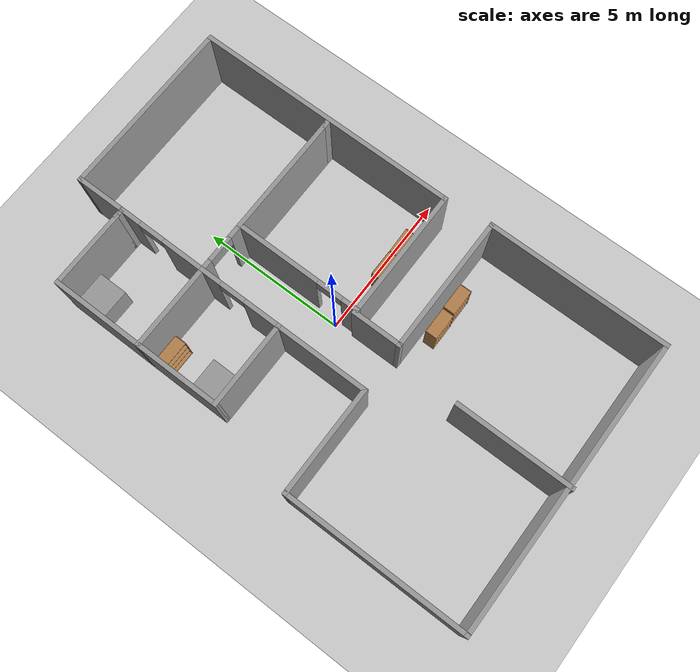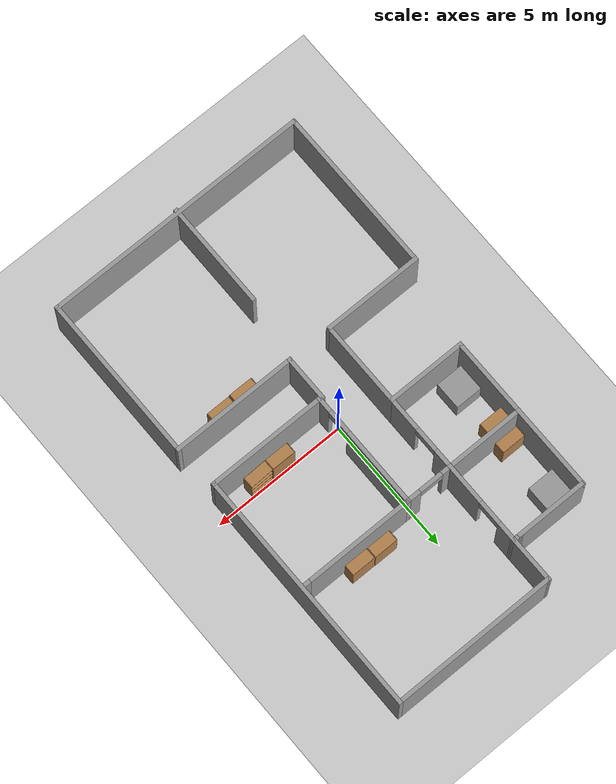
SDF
<sdf version="1.7">
 <world name="default">
  <light name="sun" type="directional">
   <pose>0 0 10 0 -0 0</pose>
   <diffuse>0.8 0.8 0.8 1</diffuse>
   <specular>0.2 0.2 0.2 1</specular>
   <attenuation>
    <range>1000</range>
    <constant>0.9</constant>
    <linear>0.01</linear>
    <quadratic>0.001</quadratic>
   </attenuation>
   <direction>-0.5 0.1 -0.9</direction>
   <spot><inner_angle>0</inner_angle><outer_angle>0</outer_angle><falloff>0</falloff></spot>
  </light>
  <model name="ground_plane">
   <static>1</static>
   <link name="link">
    <collision name="collision">
     <geometry><plane><normal>0 0 1</normal><size>100 100</size></plane></geometry>
     <surface>
      <contact><collide_bitmask>65535</collide_bitmask></contact>
      <friction><ode><mu>100</mu><mu2>50</mu2></ode></friction>
     </surface>
    </collision>
    <visual name="visual">
     <cast_shadows>0</cast_shadows>
     <geometry><plane><normal>0 0 1</normal><size>100 100</size></plane></geometry>
     <material>
      <script><uri>file://media/materials/scripts/gazebo.material</uri><name>Gazebo/Grey</name></script>
     </material>
    </visual>
   </link>
  </model>
  <gravity>0 0 -9.8</gravity>
  <magnetic_field>6e-06 2.3e-05 -4.2e-05</magnetic_field>
  <atmosphere type="adiabatic"/>
  <physics type="ode">
   <max_step_size>0.001</max_step_size>
   <real_time_factor>1</real_time_factor>
   <real_time_update_rate>1000</real_time_update_rate>
  </physics>
  <scene><ambient>0.4 0.4 0.4 1</ambient><background>0.7 0.7 0.7 1</background><shadows>1</shadows></scene>
  <audio><device>default</device></audio>
  <spherical_coordinates>
   <surface_model>EARTH_WGS84</surface_model>
   <latitude_deg>0</latitude_deg>
   <longitude_deg>0</longitude_deg>
   <elevation>0</elevation>
   <heading_deg>0</heading_deg>
  </spherical_coordinates>
  <model name="plan3">
   <pose>-0.180826 0.00285 0 0 -0 0</pose>
   <link name="Wall_0">
    <collision name="Wall_0_Collision">
     <geometry><box><size>6.25 0.15 2.5</size></box></geometry>
     <pose>0 0 1.25 0 -0 0</pose>
    </collision>
    <visual name="Wall_0_Visual">
     <pose>0 0 1.25 0 -0 0</pose>
     <geometry><box><size>6.25 0.15 2.5</size></box></geometry>
     <material>
      <script><uri>file://media/materials/scripts/gazebo.material</uri><name>Gazebo/Grey</name></script>
      <ambient>1 1 1 1</ambient>
     </material>
     <meta><layer>0</layer></meta>
    </visual>
    <pose>1.725 8.43781 0 0 -0 0</pose>
   </link>
   <link name="Wall_1">
    <collision name="Wall_1_Collision">
     <geometry><box><size>9.25 0.15 2.5</size></box></geometry>
     <pose>0 0 1.25 0 -0 0</pose>
    </collision>
    <visual name="Wall_1_Visual">
     <pose>0 0 1.25 0 -0 0</pose>
     <geometry><box><size>9.25 0.15 2.5</size></box></geometry>
     <material>
      <script><uri>file://media/materials/scripts/gazebo.material</uri><name>Gazebo/Grey</name></script>
      <ambient>1 1 1 1</ambient>
     </material>
     <meta><layer>0</layer></meta>
    </visual>
    <pose>4.775 3.88781 0 0 -0 -1.5708</pose>
   </link>
   <link name="Wall_10">
    <collision name="Wall_10_Collision">
     <geometry><box><size>0.25 0.15 2.5</size></box></geometry>
     <pose>0 0 1.25 0 -0 0</pose>
    </collision>
    <visual name="Wall_10_Visual">
     <pose>0 0 1.25 0 -0 0</pose>
     <geometry><box><size>0.25 0.15 2.5</size></box></geometry>
     <material>
      <script><uri>file://media/materials/scripts/gazebo.material</uri><name>Gazebo/Grey</name></script>
      <ambient>1 1 1 1</ambient>
     </material>
     <meta><layer>0</layer></meta>
    </visual>
    <pose>-1.525 6.78781 0 0 -0 0</pose>
   </link>
   <link name="Wall_15">
    <collision name="Wall_15_Collision">
     <geometry><box><size>0.406029 0.15 2.5</size></box></geometry>
     <pose>0 0 1.25 0 -0 0</pose>
    </collision>
    <visual name="Wall_15_Visual">
     <pose>0 0 1.25 0 -0 0</pose>
     <geometry><box><size>0.406029 0.15 2.5</size></box></geometry>
     <material>
      <script><uri>file://media/materials/scripts/gazebo.material</uri><name>Gazebo/Grey</name></script>
      <ambient>1 1 1 1</ambient>
     </material>
     <meta><layer>0</layer></meta>
    </visual>
    <pose>-1.44699 6.7871 0 0 -0 -0.005512</pose>
   </link>
   <link name="Wall_16">
    <collision name="Wall_16_Collision">
     <geometry><box><size>1.80142 0.15 2.5</size></box></geometry>
     <pose>0 0 1.25 0 -0 0</pose>
    </collision>
    <visual name="Wall_16_Visual">
     <pose>0 0 1.25 0 -0 0</pose>
     <geometry><box><size>1.80142 0.15 2.5</size></box></geometry>
     <material>
      <script><uri>file://media/materials/scripts/gazebo.material</uri><name>Gazebo/Grey</name></script>
      <ambient>1 1 1 1</ambient>
     </material>
     <meta><layer>0</layer></meta>
    </visual>
    <pose>-1.32199 7.6121 0 0 -0 1.57444</pose>
   </link>
   <link name="Wall_18">
    <collision name="Wall_18_Collision">
     <geometry><box><size>3 0.15 2.5</size></box></geometry>
     <pose>0 0 1.25 0 -0 0</pose>
    </collision>
    <visual name="Wall_18_Visual">
     <pose>0 0 1.25 0 -0 0</pose>
     <geometry><box><size>3 0.15 2.5</size></box></geometry>
     <material>
      <script><uri>file://media/materials/scripts/gazebo.material</uri><name>Gazebo/Grey</name></script>
      <ambient>1 1 1 1</ambient>
     </material>
     <meta><layer>0</layer></meta>
    </visual>
    <pose>-4.175 2.26281 0 0 -0 -1.5708</pose>
   </link>
   <link name="Wall_19">
    <collision name="Wall_19_Collision">
     <geometry><box><size>3 0.15 2.5</size></box></geometry>
     <pose>0 0 1.25 0 -0 0</pose>
    </collision>
    <visual name="Wall_19_Visual">
     <pose>0 0 1.25 0 -0 0</pose>
     <geometry><box><size>3 0.15 2.5</size></box></geometry>
     <material>
      <script><uri>file://media/materials/scripts/gazebo.material</uri><name>Gazebo/Grey</name></script>
      <ambient>1 1 1 1</ambient>
     </material>
     <meta><layer>0</layer></meta>
    </visual>
    <pose>-2.75 0.83781 0 0 -0 0</pose>
   </link>
   <link name="Wall_2">
    <collision name="Wall_2_Collision">
     <geometry><box><size>4.5 0.15 2.5</size></box></geometry>
     <pose>0 0 1.25 0 -0 0</pose>
    </collision>
    <visual name="Wall_2_Visual">
     <pose>0 0 1.25 0 -0 0</pose>
     <geometry><box><size>4.5 0.15 2.5</size></box></geometry>
     <material>
      <script><uri>file://media/materials/scripts/gazebo.material</uri><name>Gazebo/Grey</name></script>
      <ambient>1 1 1 1</ambient>
     </material>
     <meta><layer>0</layer></meta>
    </visual>
    <pose>2.6 -0.66219 0 0 -0 3.14159</pose>
   </link>
   <link name="Wall_20">
    <pose>-1.325 2.26281 0 0 -0 1.5708</pose>
    <visual name="Wall_20_Visual_0">
     <pose>-0.834334 0 1.25 0 -0 0</pose>
     <geometry><box><size>1.33133 0.15 2.5</size></box></geometry>
     <material>
      <script><uri>file://media/materials/scripts/gazebo.material</uri><name>Gazebo/Grey</name></script>
      <ambient>1 1 1 1</ambient>
     </material>
     <meta><layer>0</layer></meta>
    </visual>
    <collision name="Wall_20_Collision_0">
     <geometry><box><size>1.33133 0.15 2.5</size></box></geometry>
     <pose>-0.834334 0 1.25 0 -0 0</pose>
    </collision>
    <visual name="Wall_20_Visual_1">
     <pose>1.11567 0 1.25 0 -0 0</pose>
     <geometry><box><size>0.768667 0.15 2.5</size></box></geometry>
     <material>
      <script><uri>file://media/materials/scripts/gazebo.material</uri><name>Gazebo/Grey</name></script>
      <ambient>1 1 1 1</ambient>
     </material>
     <meta><layer>0</layer></meta>
    </visual>
    <collision name="Wall_20_Collision_1">
     <geometry><box><size>0.768667 0.15 2.5</size></box></geometry>
     <pose>1.11567 0 1.25 0 -0 0</pose>
    </collision>
    <visual name="Wall_20_Visual_2">
     <pose>0.281333 0 2.25 0 -0 0</pose>
     <geometry><box><size>0.9 0.15 0.5</size></box></geometry>
     <material>
      <script><uri>file://media/materials/scripts/gazebo.material</uri><name>Gazebo/Grey</name></script>
      <ambient>1 1 1 1</ambient>
     </material>
     <meta><layer>0</layer></meta>
    </visual>
    <collision name="Wall_20_Collision_2">
     <geometry><box><size>0.9 0.15 0.5</size></box></geometry>
     <pose>0.281333 0 2.25 0 -0 0</pose>
    </collision>
   </link>
   <link name="Wall_22">
    <collision name="Wall_22_Collision">
     <geometry><box><size>3.25 0.15 2.5</size></box></geometry>
     <pose>0 0 1.25 0 -0 0</pose>
    </collision>
    <visual name="Wall_22_Visual">
     <pose>0 0 1.25 0 -0 0</pose>
     <geometry><box><size>3.25 0.15 2.5</size></box></geometry>
     <material>
      <script><uri>file://media/materials/scripts/gazebo.material</uri><name>Gazebo/Grey</name></script>
      <ambient>1 1 1 1</ambient>
     </material>
     <meta><layer>0</layer></meta>
    </visual>
    <pose>-1.325 -0.71219 0 0 -0 -1.5708</pose>
   </link>
   <link name="Wall_23">
    <collision name="Wall_23_Collision">
     <geometry><box><size>3.75 0.15 2.5</size></box></geometry>
     <pose>0 0 1.25 0 -0 0</pose>
    </collision>
    <visual name="Wall_23_Visual">
     <pose>0 0 1.25 0 -0 0</pose>
     <geometry><box><size>3.75 0.15 2.5</size></box></geometry>
     <material>
      <script><uri>file://media/materials/scripts/gazebo.material</uri><name>Gazebo/Grey</name></script>
      <ambient>1 1 1 1</ambient>
     </material>
     <meta><layer>0</layer></meta>
    </visual>
    <pose>-3.125 -2.26219 0 0 -0 3.14159</pose>
   </link>
   <link name="Wall_24">
    <collision name="Wall_24_Collision">
     <geometry><box><size>6.25 0.15 2.5</size></box></geometry>
     <pose>0 0 1.25 0 -0 0</pose>
    </collision>
    <visual name="Wall_24_Visual">
     <pose>0 0 1.25 0 -0 0</pose>
     <geometry><box><size>6.25 0.15 2.5</size></box></geometry>
     <material>
      <script><uri>file://media/materials/scripts/gazebo.material</uri><name>Gazebo/Grey</name></script>
      <ambient>1 1 1 1</ambient>
     </material>
     <meta><layer>0</layer></meta>
    </visual>
    <pose>-4.925 -5.31219 0 0 -0 -1.5708</pose>
   </link>
   <link name="Wall_25">
    <collision name="Wall_25_Collision">
     <geometry><box><size>10 0.15 2.5</size></box></geometry>
     <pose>0 0 1.25 0 -0 0</pose>
    </collision>
    <visual name="Wall_25_Visual">
     <pose>0 0 1.25 0 -0 0</pose>
     <geometry><box><size>10 0.15 2.5</size></box></geometry>
     <material>
      <script><uri>file://media/materials/scripts/gazebo.material</uri><name>Gazebo/Grey</name></script>
      <ambient>1 1 1 1</ambient>
     </material>
     <meta><layer>0</layer></meta>
    </visual>
    <pose>-0 -8.36219 0 0 -0 0</pose>
   </link>
   <link name="Wall_26">
    <collision name="Wall_26_Collision">
     <geometry><box><size>6.25 0.15 2.5</size></box></geometry>
     <pose>0 0 1.25 0 -0 0</pose>
    </collision>
    <visual name="Wall_26_Visual">
     <pose>0 0 1.25 0 -0 0</pose>
     <geometry><box><size>6.25 0.15 2.5</size></box></geometry>
     <material>
      <script><uri>file://media/materials/scripts/gazebo.material</uri><name>Gazebo/Grey</name></script>
      <ambient>1 1 1 1</ambient>
     </material>
     <meta><layer>0</layer></meta>
    </visual>
    <pose>4.925 -5.31219 0 0 -0 1.5708</pose>
   </link>
   <link name="Wall_27">
    <collision name="Wall_27_Collision">
     <geometry><box><size>4.75 0.15 2.5</size></box></geometry>
     <pose>0 0 1.25 0 -0 0</pose>
    </collision>
    <visual name="Wall_27_Visual">
     <pose>0 0 1.25 0 -0 0</pose>
     <geometry><box><size>4.75 0.15 2.5</size></box></geometry>
     <material>
      <script><uri>file://media/materials/scripts/gazebo.material</uri><name>Gazebo/Grey</name></script>
      <ambient>1 1 1 1</ambient>
     </material>
     <meta><layer>0</layer></meta>
    </visual>
    <pose>2.625 -2.26219 0 0 -0 3.14159</pose>
   </link>
   <link name="Wall_28">
    <collision name="Wall_28_Collision">
     <geometry><box><size>1.75 0.15 2.5</size></box></geometry>
     <pose>0 0 1.25 0 -0 0</pose>
    </collision>
    <visual name="Wall_28_Visual">
     <pose>0 0 1.25 0 -0 0</pose>
     <geometry><box><size>1.75 0.15 2.5</size></box></geometry>
     <material>
      <script><uri>file://media/materials/scripts/gazebo.material</uri><name>Gazebo/Grey</name></script>
      <ambient>1 1 1 1</ambient>
     </material>
     <meta><layer>0</layer></meta>
    </visual>
    <pose>0.325 -1.46219 0 0 -0 1.5708</pose>
   </link>
   <link name="Wall_3">
    <pose>0.425 1.51281 0 0 -0 1.5708</pose>
    <visual name="Wall_3_Visual_0">
     <pose>-1.94457 0 1.25 0 -0 0</pose>
     <geometry><box><size>0.610855 0.15 2.5</size></box></geometry>
     <material>
      <script><uri>file://media/materials/scripts/gazebo.material</uri><name>Gazebo/Grey</name></script>
      <ambient>1 1 1 1</ambient>
     </material>
     <meta><layer>0</layer></meta>
    </visual>
    <collision name="Wall_3_Collision_0">
     <geometry><box><size>0.610855 0.15 2.5</size></box></geometry>
     <pose>-1.94457 0 1.25 0 -0 0</pose>
    </collision>
    <visual name="Wall_3_Visual_1">
     <pose>0.755428 0 1.25 0 -0 0</pose>
     <geometry><box><size>2.98915 0.15 2.5</size></box></geometry>
     <material>
      <script><uri>file://media/materials/scripts/gazebo.material</uri><name>Gazebo/Grey</name></script>
      <ambient>1 1 1 1</ambient>
     </material>
     <meta><layer>0</layer></meta>
    </visual>
    <collision name="Wall_3_Collision_1">
     <geometry><box><size>2.98915 0.15 2.5</size></box></geometry>
     <pose>0.755428 0 1.25 0 -0 0</pose>
    </collision>
    <visual name="Wall_3_Visual_2">
     <pose>-1.18914 0 2.25 0 -0 0</pose>
     <geometry><box><size>0.9 0.15 0.5</size></box></geometry>
     <material>
      <script><uri>file://media/materials/scripts/gazebo.material</uri><name>Gazebo/Grey</name></script>
      <ambient>1 1 1 1</ambient>
     </material>
     <meta><layer>0</layer></meta>
    </visual>
    <collision name="Wall_3_Collision_2">
     <geometry><box><size>0.9 0.15 0.5</size></box></geometry>
     <pose>-1.18914 0 2.25 0 -0 0</pose>
    </collision>
   </link>
   <link name="Wall_32">
    <collision name="Wall_32_Collision">
     <geometry><box><size>4 0.15 2.5</size></box></geometry>
     <pose>0 0 1.25 0 -0 0</pose>
    </collision>
    <visual name="Wall_32_Visual">
     <pose>0 0 1.25 0 -0 0</pose>
     <geometry><box><size>4 0.15 2.5</size></box></geometry>
     <material>
      <script><uri>file://media/materials/scripts/gazebo.material</uri><name>Gazebo/Grey</name></script>
      <ambient>1 1 1 1</ambient>
     </material>
     <meta><layer>0</layer></meta>
    </visual>
    <pose>-0.070108 -6.51308 0 0 -0 -1.5708</pose>
   </link>
   <link name="Wall_34">
    <pose>-1.32199 5.2371 0 0 -0 -1.57274</pose>
    <visual name="Wall_34_Visual_0">
     <pose>-1.23447 0 1.25 0 -0 0</pose>
     <geometry><box><size>0.779648 0.15 2.5</size></box></geometry>
     <material>
      <script><uri>file://media/materials/scripts/gazebo.material</uri><name>Gazebo/Grey</name></script>
      <ambient>1 1 1 1</ambient>
     </material>
     <meta><layer>0</layer></meta>
    </visual>
    <collision name="Wall_34_Collision_0">
     <geometry><box><size>0.779648 0.15 2.5</size></box></geometry>
     <pose>-1.23447 0 1.25 0 -0 0</pose>
    </collision>
    <visual name="Wall_34_Visual_1">
     <pose>0.839824 0 1.25 0 -0 0</pose>
     <geometry><box><size>1.56895 0.15 2.5</size></box></geometry>
     <material>
      <script><uri>file://media/materials/scripts/gazebo.material</uri><name>Gazebo/Grey</name></script>
      <ambient>1 1 1 1</ambient>
     </material>
     <meta><layer>0</layer></meta>
    </visual>
    <collision name="Wall_34_Collision_1">
     <geometry><box><size>1.56895 0.15 2.5</size></box></geometry>
     <pose>0.839824 0 1.25 0 -0 0</pose>
    </collision>
    <visual name="Wall_34_Visual_2">
     <pose>-0.39465 0 2.25 0 -0 0</pose>
     <geometry><box><size>0.9 0.15 0.5</size></box></geometry>
     <material>
      <script><uri>file://media/materials/scripts/gazebo.material</uri><name>Gazebo/Grey</name></script>
      <ambient>1 1 1 1</ambient>
     </material>
     <meta><layer>0</layer></meta>
    </visual>
    <collision name="Wall_34_Collision_2">
     <geometry><box><size>0.9 0.15 0.5</size></box></geometry>
     <pose>-0.39465 0 2.25 0 -0 0</pose>
    </collision>
   </link>
   <link name="Wall_4">
    <collision name="Wall_4_Collision">
     <geometry><box><size>4.25 0.15 2.5</size></box></geometry>
     <pose>0 0 1.25 0 -0 0</pose>
    </collision>
    <visual name="Wall_4_Visual">
     <pose>0 0 1.25 0 -0 0</pose>
     <geometry><box><size>4.25 0.15 2.5</size></box></geometry>
     <material>
      <script><uri>file://media/materials/scripts/gazebo.material</uri><name>Gazebo/Grey</name></script>
      <ambient>1 1 1 1</ambient>
     </material>
     <meta><layer>0</layer></meta>
    </visual>
    <pose>2.475 3.68781 0 0 -0 0</pose>
   </link>
   <link name="Wall_5">
    <collision name="Wall_5_Collision">
     <geometry><box><size>0.25 0.15 2.5</size></box></geometry>
     <pose>0 0 1.25 0 -0 0</pose>
    </collision>
    <visual name="Wall_5_Visual">
     <pose>0 0 1.25 0 -0 0</pose>
     <geometry><box><size>0.25 0.15 2.5</size></box></geometry>
     <material>
      <script><uri>file://media/materials/scripts/gazebo.material</uri><name>Gazebo/Grey</name></script>
      <ambient>1 1 1 1</ambient>
     </material>
     <meta><layer>0</layer></meta>
    </visual>
    <pose>4.575 3.68781 0 0 -0 0</pose>
   </link>
   <link name="Wall_7">
    <pose>-1.875 3.68781 0 0 -0 3.14159</pose>
    <visual name="Wall_7_Visual_0">
     <pose>-2.09181 0 1.25 0 -0 0</pose>
     <geometry><box><size>0.566379 0.15 2.5</size></box></geometry>
     <material>
      <script><uri>file://media/materials/scripts/gazebo.material</uri><name>Gazebo/Grey</name></script>
      <ambient>1 1 1 1</ambient>
     </material>
     <meta><layer>0</layer></meta>
    </visual>
    <collision name="Wall_7_Collision_0">
     <geometry><box><size>0.566379 0.15 2.5</size></box></geometry>
     <pose>-2.09181 0 1.25 0 -0 0</pose>
    </collision>
    <visual name="Wall_7_Visual_1">
     <pose>0.733189 0 1.25 0 -0 0</pose>
     <geometry><box><size>3.28362 0.15 2.5</size></box></geometry>
     <material>
      <script><uri>file://media/materials/scripts/gazebo.material</uri><name>Gazebo/Grey</name></script>
      <ambient>1 1 1 1</ambient>
     </material>
     <meta><layer>0</layer></meta>
    </visual>
    <collision name="Wall_7_Collision_1">
     <geometry><box><size>3.28362 0.15 2.5</size></box></geometry>
     <pose>0.733189 0 1.25 0 -0 0</pose>
    </collision>
    <visual name="Wall_7_Visual_2">
     <pose>-1.35862 0 2.25 0 -0 0</pose>
     <geometry><box><size>0.9 0.15 0.5</size></box></geometry>
     <material>
      <script><uri>file://media/materials/scripts/gazebo.material</uri><name>Gazebo/Grey</name></script>
      <ambient>1 1 1 1</ambient>
     </material>
     <meta><layer>0</layer></meta>
    </visual>
    <collision name="Wall_7_Collision_2">
     <geometry><box><size>0.9 0.15 0.5</size></box></geometry>
     <pose>-1.35862 0 2.25 0 -0 0</pose>
    </collision>
   </link>
   <link name="Wall_8">
    <collision name="Wall_8_Collision">
     <geometry><box><size>3.25 0.15 2.5</size></box></geometry>
     <pose>0 0 1.25 0 -0 0</pose>
    </collision>
    <visual name="Wall_8_Visual">
     <pose>0 0 1.25 0 -0 0</pose>
     <geometry><box><size>3.25 0.15 2.5</size></box></geometry>
     <material>
      <script><uri>file://media/materials/scripts/gazebo.material</uri><name>Gazebo/Grey</name></script>
      <ambient>1 1 1 1</ambient>
     </material>
     <meta><layer>0</layer></meta>
    </visual>
    <pose>-4.175 5.23781 0 0 -0 1.5708</pose>
   </link>
   <link name="Wall_9">
    <collision name="Wall_9_Collision">
     <geometry><box><size>2.75 0.15 2.5</size></box></geometry>
     <pose>0 0 1.25 0 -0 0</pose>
    </collision>
    <visual name="Wall_9_Visual">
     <pose>0 0 1.25 0 -0 0</pose>
     <geometry><box><size>2.75 0.15 2.5</size></box></geometry>
     <material>
      <script><uri>file://media/materials/scripts/gazebo.material</uri><name>Gazebo/Grey</name></script>
      <ambient>1 1 1 1</ambient>
     </material>
     <meta><layer>0</layer></meta>
    </visual>
    <pose>-2.875 6.78781 0 0 -0 0</pose>
   </link>
   <static>1</static>
  </model>
  <model name="bookshelf">
   <static>1</static>
   <link name="link">
    <inertial><mass>1</mass></inertial>
    <collision name="back">
     <pose>0 0.005 0.6 0 -0 0</pose>
     <geometry><box><size>0.9 0.01 1.2</size></box></geometry>
    </collision>
    <visual name="visual1">
     <pose>0 0.005 0.6 0 -0 0</pose>
     <geometry><box><size>0.9 0.01 1.2</size></box></geometry>
     <material>
      <script><uri>file://media/materials/scripts/gazebo.material</uri><name>Gazebo/Wood</name></script>
     </material>
    </visual>
    <collision name="left_side">
     <pose>0.45 -0.195 0.6 0 -0 0</pose>
     <geometry><box><size>0.02 0.4 1.2</size></box></geometry>
    </collision>
    <visual name="visual2">
     <pose>0.45 -0.195 0.6 0 -0 0</pose>
     <geometry><box><size>0.02 0.4 1.2</size></box></geometry>
     <material>
      <script><uri>file://media/materials/scripts/gazebo.material</uri><name>Gazebo/Wood</name></script>
     </material>
    </visual>
    <collision name="right_side">
     <pose>-0.45 -0.195 0.6 0 -0 0</pose>
     <geometry><box><size>0.02 0.4 1.2</size></box></geometry>
    </collision>
    <visual name="visual3">
     <pose>-0.45 -0.195 0.6 0 -0 0</pose>
     <geometry><box><size>0.02 0.4 1.2</size></box></geometry>
     <material>
      <script><uri>file://media/materials/scripts/gazebo.material</uri><name>Gazebo/Wood</name></script>
     </material>
    </visual>
    <collision name="bottom">
     <pose>0 -0.195 0.03 0 -0 0</pose>
     <geometry><box><size>0.88 0.4 0.06</size></box></geometry>
    </collision>
    <visual name="visual4">
     <pose>0 -0.195 0.03 0 -0 0</pose>
     <geometry><box><size>0.88 0.4 0.06</size></box></geometry>
     <material>
      <script><uri>file://media/materials/scripts/gazebo.material</uri><name>Gazebo/Wood</name></script>
     </material>
    </visual>
    <collision name="top">
     <pose>0 -0.195 1.19 0 -0 0</pose>
     <geometry><box><size>0.88 0.4 0.02</size></box></geometry>
    </collision>
    <visual name="visual5">
     <pose>0 -0.195 1.19 0 -0 0</pose>
     <geometry><box><size>0.88 0.4 0.02</size></box></geometry>
     <material>
      <script><uri>file://media/materials/scripts/gazebo.material</uri><name>Gazebo/Wood</name></script>
     </material>
    </visual>
    <collision name="low_shelf">
     <pose>0 -0.195 0.43 0 -0 0</pose>
     <geometry><box><size>0.88 0.4 0.02</size></box></geometry>
    </collision>
    <visual name="visual6">
     <pose>0 -0.195 0.43 0 -0 0</pose>
     <geometry><box><size>0.88 0.4 0.02</size></box></geometry>
     <material>
      <script><uri>file://media/materials/scripts/gazebo.material</uri><name>Gazebo/Wood</name></script>
     </material>
    </visual>
    <collision name="high_shelf">
     <pose>0 -0.195 0.8 0 -0 0</pose>
     <geometry><box><size>0.88 0.4 0.02</size></box></geometry>
    </collision>
    <visual name="visual7">
     <pose>0 -0.195 0.8 0 -0 0</pose>
     <geometry><box><size>0.88 0.4 0.02</size></box></geometry>
     <material>
      <script><uri>file://media/materials/scripts/gazebo.material</uri><name>Gazebo/Wood</name></script>
     </material>
    </visual>
   </link>
   <pose>2.66011 -2.46249 0 0 -0 0</pose>
  </model>
  <model name="bookshelf_0">
   <static>1</static>
   <link name="link">
    <inertial><mass>1</mass></inertial>
    <collision name="back">
     <pose>0 0.005 0.6 0 -0 0</pose>
     <geometry><box><size>0.9 0.01 1.2</size></box></geometry>
    </collision>
    <visual name="visual1">
     <pose>0 0.005 0.6 0 -0 0</pose>
     <geometry><box><size>0.9 0.01 1.2</size></box></geometry>
     <material>
      <script><uri>file://media/materials/scripts/gazebo.material</uri><name>Gazebo/Wood</name></script>
     </material>
    </visual>
    <collision name="left_side">
     <pose>0.45 -0.195 0.6 0 -0 0</pose>
     <geometry><box><size>0.02 0.4 1.2</size></box></geometry>
    </collision>
    <visual name="visual2">
     <pose>0.45 -0.195 0.6 0 -0 0</pose>
     <geometry><box><size>0.02 0.4 1.2</size></box></geometry>
     <material>
      <script><uri>file://media/materials/scripts/gazebo.material</uri><name>Gazebo/Wood</name></script>
     </material>
    </visual>
    <collision name="right_side">
     <pose>-0.45 -0.195 0.6 0 -0 0</pose>
     <geometry><box><size>0.02 0.4 1.2</size></box></geometry>
    </collision>
    <visual name="visual3">
     <pose>-0.45 -0.195 0.6 0 -0 0</pose>
     <geometry><box><size>0.02 0.4 1.2</size></box></geometry>
     <material>
      <script><uri>file://media/materials/scripts/gazebo.material</uri><name>Gazebo/Wood</name></script>
     </material>
    </visual>
    <collision name="bottom">
     <pose>0 -0.195 0.03 0 -0 0</pose>
     <geometry><box><size>0.88 0.4 0.06</size></box></geometry>
    </collision>
    <visual name="visual4">
     <pose>0 -0.195 0.03 0 -0 0</pose>
     <geometry><box><size>0.88 0.4 0.06</size></box></geometry>
     <material>
      <script><uri>file://media/materials/scripts/gazebo.material</uri><name>Gazebo/Wood</name></script>
     </material>
    </visual>
    <collision name="top">
     <pose>0 -0.195 1.19 0 -0 0</pose>
     <geometry><box><size>0.88 0.4 0.02</size></box></geometry>
    </collision>
    <visual name="visual5">
     <pose>0 -0.195 1.19 0 -0 0</pose>
     <geometry><box><size>0.88 0.4 0.02</size></box></geometry>
     <material>
      <script><uri>file://media/materials/scripts/gazebo.material</uri><name>Gazebo/Wood</name></script>
     </material>
    </visual>
    <collision name="low_shelf">
     <pose>0 -0.195 0.43 0 -0 0</pose>
     <geometry><box><size>0.88 0.4 0.02</size></box></geometry>
    </collision>
    <visual name="visual6">
     <pose>0 -0.195 0.43 0 -0 0</pose>
     <geometry><box><size>0.88 0.4 0.02</size></box></geometry>
     <material>
      <script><uri>file://media/materials/scripts/gazebo.material</uri><name>Gazebo/Wood</name></script>
     </material>
    </visual>
    <collision name="high_shelf">
     <pose>0 -0.195 0.8 0 -0 0</pose>
     <geometry><box><size>0.88 0.4 0.02</size></box></geometry>
    </collision>
    <visual name="visual7">
     <pose>0 -0.195 0.8 0 -0 0</pose>
     <geometry><box><size>0.88 0.4 0.02</size></box></geometry>
     <material>
      <script><uri>file://media/materials/scripts/gazebo.material</uri><name>Gazebo/Wood</name></script>
     </material>
    </visual>
   </link>
   <pose>1.71502 -2.48239 0 0 -0 0</pose>
  </model>
  <model name="bookshelf_1">
   <static>1</static>
   <link name="link">
    <inertial><mass>1</mass></inertial>
    <collision name="back">
     <pose>0 0.005 0.6 0 -0 0</pose>
     <geometry><box><size>0.9 0.01 1.2</size></box></geometry>
    </collision>
    <visual name="visual1">
     <pose>0 0.005 0.6 0 -0 0</pose>
     <geometry><box><size>0.9 0.01 1.2</size></box></geometry>
     <material>
      <script><uri>file://media/materials/scripts/gazebo.material</uri><name>Gazebo/Wood</name></script>
     </material>
    </visual>
    <collision name="left_side">
     <pose>0.45 -0.195 0.6 0 -0 0</pose>
     <geometry><box><size>0.02 0.4 1.2</size></box></geometry>
    </collision>
    <visual name="visual2">
     <pose>0.45 -0.195 0.6 0 -0 0</pose>
     <geometry><box><size>0.02 0.4 1.2</size></box></geometry>
     <material>
      <script><uri>file://media/materials/scripts/gazebo.material</uri><name>Gazebo/Wood</name></script>
     </material>
    </visual>
    <collision name="right_side">
     <pose>-0.45 -0.195 0.6 0 -0 0</pose>
     <geometry><box><size>0.02 0.4 1.2</size></box></geometry>
    </collision>
    <visual name="visual3">
     <pose>-0.45 -0.195 0.6 0 -0 0</pose>
     <geometry><box><size>0.02 0.4 1.2</size></box></geometry>
     <material>
      <script><uri>file://media/materials/scripts/gazebo.material</uri><name>Gazebo/Wood</name></script>
     </material>
    </visual>
    <collision name="bottom">
     <pose>0 -0.195 0.03 0 -0 0</pose>
     <geometry><box><size>0.88 0.4 0.06</size></box></geometry>
    </collision>
    <visual name="visual4">
     <pose>0 -0.195 0.03 0 -0 0</pose>
     <geometry><box><size>0.88 0.4 0.06</size></box></geometry>
     <material>
      <script><uri>file://media/materials/scripts/gazebo.material</uri><name>Gazebo/Wood</name></script>
     </material>
    </visual>
    <collision name="top">
     <pose>0 -0.195 1.19 0 -0 0</pose>
     <geometry><box><size>0.88 0.4 0.02</size></box></geometry>
    </collision>
    <visual name="visual5">
     <pose>0 -0.195 1.19 0 -0 0</pose>
     <geometry><box><size>0.88 0.4 0.02</size></box></geometry>
     <material>
      <script><uri>file://media/materials/scripts/gazebo.material</uri><name>Gazebo/Wood</name></script>
     </material>
    </visual>
    <collision name="low_shelf">
     <pose>0 -0.195 0.43 0 -0 0</pose>
     <geometry><box><size>0.88 0.4 0.02</size></box></geometry>
    </collision>
    <visual name="visual6">
     <pose>0 -0.195 0.43 0 -0 0</pose>
     <geometry><box><size>0.88 0.4 0.02</size></box></geometry>
     <material>
      <script><uri>file://media/materials/scripts/gazebo.material</uri><name>Gazebo/Wood</name></script>
     </material>
    </visual>
    <collision name="high_shelf">
     <pose>0 -0.195 0.8 0 -0 0</pose>
     <geometry><box><size>0.88 0.4 0.02</size></box></geometry>
    </collision>
    <visual name="visual7">
     <pose>0 -0.195 0.8 0 -0 0</pose>
     <geometry><box><size>0.88 0.4 0.02</size></box></geometry>
     <material>
      <script><uri>file://media/materials/scripts/gazebo.material</uri><name>Gazebo/Wood</name></script>
     </material>
    </visual>
   </link>
   <pose>3.12836 -0.459616 0 0 0 -3.11496</pose>
  </model>
  <model name="bookshelf_2">
   <static>1</static>
   <link name="link">
    <inertial><mass>1</mass></inertial>
    <collision name="back">
     <pose>0 0.005 0.6 0 -0 0</pose>
     <geometry><box><size>0.9 0.01 1.2</size></box></geometry>
    </collision>
    <visual name="visual1">
     <pose>0 0.005 0.6 0 -0 0</pose>
     <geometry><box><size>0.9 0.01 1.2</size></box></geometry>
     <material>
      <script><uri>file://media/materials/scripts/gazebo.material</uri><name>Gazebo/Wood</name></script>
     </material>
    </visual>
    <collision name="left_side">
     <pose>0.45 -0.195 0.6 0 -0 0</pose>
     <geometry><box><size>0.02 0.4 1.2</size></box></geometry>
    </collision>
    <visual name="visual2">
     <pose>0.45 -0.195 0.6 0 -0 0</pose>
     <geometry><box><size>0.02 0.4 1.2</size></box></geometry>
     <material>
      <script><uri>file://media/materials/scripts/gazebo.material</uri><name>Gazebo/Wood</name></script>
     </material>
    </visual>
    <collision name="right_side">
     <pose>-0.45 -0.195 0.6 0 -0 0</pose>
     <geometry><box><size>0.02 0.4 1.2</size></box></geometry>
    </collision>
    <visual name="visual3">
     <pose>-0.45 -0.195 0.6 0 -0 0</pose>
     <geometry><box><size>0.02 0.4 1.2</size></box></geometry>
     <material>
      <script><uri>file://media/materials/scripts/gazebo.material</uri><name>Gazebo/Wood</name></script>
     </material>
    </visual>
    <collision name="bottom">
     <pose>0 -0.195 0.03 0 -0 0</pose>
     <geometry><box><size>0.88 0.4 0.06</size></box></geometry>
    </collision>
    <visual name="visual4">
     <pose>0 -0.195 0.03 0 -0 0</pose>
     <geometry><box><size>0.88 0.4 0.06</size></box></geometry>
     <material>
      <script><uri>file://media/materials/scripts/gazebo.material</uri><name>Gazebo/Wood</name></script>
     </material>
    </visual>
    <collision name="top">
     <pose>0 -0.195 1.19 0 -0 0</pose>
     <geometry><box><size>0.88 0.4 0.02</size></box></geometry>
    </collision>
    <visual name="visual5">
     <pose>0 -0.195 1.19 0 -0 0</pose>
     <geometry><box><size>0.88 0.4 0.02</size></box></geometry>
     <material>
      <script><uri>file://media/materials/scripts/gazebo.material</uri><name>Gazebo/Wood</name></script>
     </material>
    </visual>
    <collision name="low_shelf">
     <pose>0 -0.195 0.43 0 -0 0</pose>
     <geometry><box><size>0.88 0.4 0.02</size></box></geometry>
    </collision>
    <visual name="visual6">
     <pose>0 -0.195 0.43 0 -0 0</pose>
     <geometry><box><size>0.88 0.4 0.02</size></box></geometry>
     <material>
      <script><uri>file://media/materials/scripts/gazebo.material</uri><name>Gazebo/Wood</name></script>
     </material>
    </visual>
    <collision name="high_shelf">
     <pose>0 -0.195 0.8 0 -0 0</pose>
     <geometry><box><size>0.88 0.4 0.02</size></box></geometry>
    </collision>
    <visual name="visual7">
     <pose>0 -0.195 0.8 0 -0 0</pose>
     <geometry><box><size>0.88 0.4 0.02</size></box></geometry>
     <material>
      <script><uri>file://media/materials/scripts/gazebo.material</uri><name>Gazebo/Wood</name></script>
     </material>
    </visual>
   </link>
   <pose>2.21184 -0.08182 0 0 -0 0</pose>
  </model>
  <model name="bookshelf_3">
   <static>1</static>
   <link name="link">
    <inertial><mass>1</mass></inertial>
    <collision name="back">
     <pose>0 0.005 0.6 0 -0 0</pose>
     <geometry><box><size>0.9 0.01 1.2</size></box></geometry>
    </collision>
    <visual name="visual1">
     <pose>0 0.005 0.6 0 -0 0</pose>
     <geometry><box><size>0.9 0.01 1.2</size></box></geometry>
     <material>
      <script><uri>file://media/materials/scripts/gazebo.material</uri><name>Gazebo/Wood</name></script>
     </material>
    </visual>
    <collision name="left_side">
     <pose>0.45 -0.195 0.6 0 -0 0</pose>
     <geometry><box><size>0.02 0.4 1.2</size></box></geometry>
    </collision>
    <visual name="visual2">
     <pose>0.45 -0.195 0.6 0 -0 0</pose>
     <geometry><box><size>0.02 0.4 1.2</size></box></geometry>
     <material>
      <script><uri>file://media/materials/scripts/gazebo.material</uri><name>Gazebo/Wood</name></script>
     </material>
    </visual>
    <collision name="right_side">
     <pose>-0.45 -0.195 0.6 0 -0 0</pose>
     <geometry><box><size>0.02 0.4 1.2</size></box></geometry>
    </collision>
    <visual name="visual3">
     <pose>-0.45 -0.195 0.6 0 -0 0</pose>
     <geometry><box><size>0.02 0.4 1.2</size></box></geometry>
     <material>
      <script><uri>file://media/materials/scripts/gazebo.material</uri><name>Gazebo/Wood</name></script>
     </material>
    </visual>
    <collision name="bottom">
     <pose>0 -0.195 0.03 0 -0 0</pose>
     <geometry><box><size>0.88 0.4 0.06</size></box></geometry>
    </collision>
    <visual name="visual4">
     <pose>0 -0.195 0.03 0 -0 0</pose>
     <geometry><box><size>0.88 0.4 0.06</size></box></geometry>
     <material>
      <script><uri>file://media/materials/scripts/gazebo.material</uri><name>Gazebo/Wood</name></script>
     </material>
    </visual>
    <collision name="top">
     <pose>0 -0.195 1.19 0 -0 0</pose>
     <geometry><box><size>0.88 0.4 0.02</size></box></geometry>
    </collision>
    <visual name="visual5">
     <pose>0 -0.195 1.19 0 -0 0</pose>
     <geometry><box><size>0.88 0.4 0.02</size></box></geometry>
     <material>
      <script><uri>file://media/materials/scripts/gazebo.material</uri><name>Gazebo/Wood</name></script>
     </material>
    </visual>
    <collision name="low_shelf">
     <pose>0 -0.195 0.43 0 -0 0</pose>
     <geometry><box><size>0.88 0.4 0.02</size></box></geometry>
    </collision>
    <visual name="visual6">
     <pose>0 -0.195 0.43 0 -0 0</pose>
     <geometry><box><size>0.88 0.4 0.02</size></box></geometry>
     <material>
      <script><uri>file://media/materials/scripts/gazebo.material</uri><name>Gazebo/Wood</name></script>
     </material>
    </visual>
    <collision name="high_shelf">
     <pose>0 -0.195 0.8 0 -0 0</pose>
     <geometry><box><size>0.88 0.4 0.02</size></box></geometry>
    </collision>
    <visual name="visual7">
     <pose>0 -0.195 0.8 0 -0 0</pose>
     <geometry><box><size>0.88 0.4 0.02</size></box></geometry>
     <material>
      <script><uri>file://media/materials/scripts/gazebo.material</uri><name>Gazebo/Wood</name></script>
     </material>
    </visual>
   </link>
   <pose>2.47814 4.21292 0 0 -0 0</pose>
  </model>
  <model name="bookshelf_4">
   <static>1</static>
   <link name="link">
    <inertial><mass>1</mass></inertial>
    <collision name="back">
     <pose>0 0.005 0.6 0 -0 0</pose>
     <geometry><box><size>0.9 0.01 1.2</size></box></geometry>
    </collision>
    <visual name="visual1">
     <pose>0 0.005 0.6 0 -0 0</pose>
     <geometry><box><size>0.9 0.01 1.2</size></box></geometry>
     <material>
      <script><uri>file://media/materials/scripts/gazebo.material</uri><name>Gazebo/Wood</name></script>
     </material>
    </visual>
    <collision name="left_side">
     <pose>0.45 -0.195 0.6 0 -0 0</pose>
     <geometry><box><size>0.02 0.4 1.2</size></box></geometry>
    </collision>
    <visual name="visual2">
     <pose>0.45 -0.195 0.6 0 -0 0</pose>
     <geometry><box><size>0.02 0.4 1.2</size></box></geometry>
     <material>
      <script><uri>file://media/materials/scripts/gazebo.material</uri><name>Gazebo/Wood</name></script>
     </material>
    </visual>
    <collision name="right_side">
     <pose>-0.45 -0.195 0.6 0 -0 0</pose>
     <geometry><box><size>0.02 0.4 1.2</size></box></geometry>
    </collision>
    <visual name="visual3">
     <pose>-0.45 -0.195 0.6 0 -0 0</pose>
     <geometry><box><size>0.02 0.4 1.2</size></box></geometry>
     <material>
      <script><uri>file://media/materials/scripts/gazebo.material</uri><name>Gazebo/Wood</name></script>
     </material>
    </visual>
    <collision name="bottom">
     <pose>0 -0.195 0.03 0 -0 0</pose>
     <geometry><box><size>0.88 0.4 0.06</size></box></geometry>
    </collision>
    <visual name="visual4">
     <pose>0 -0.195 0.03 0 -0 0</pose>
     <geometry><box><size>0.88 0.4 0.06</size></box></geometry>
     <material>
      <script><uri>file://media/materials/scripts/gazebo.material</uri><name>Gazebo/Wood</name></script>
     </material>
    </visual>
    <collision name="top">
     <pose>0 -0.195 1.19 0 -0 0</pose>
     <geometry><box><size>0.88 0.4 0.02</size></box></geometry>
    </collision>
    <visual name="visual5">
     <pose>0 -0.195 1.19 0 -0 0</pose>
     <geometry><box><size>0.88 0.4 0.02</size></box></geometry>
     <material>
      <script><uri>file://media/materials/scripts/gazebo.material</uri><name>Gazebo/Wood</name></script>
     </material>
    </visual>
    <collision name="low_shelf">
     <pose>0 -0.195 0.43 0 -0 0</pose>
     <geometry><box><size>0.88 0.4 0.02</size></box></geometry>
    </collision>
    <visual name="visual6">
     <pose>0 -0.195 0.43 0 -0 0</pose>
     <geometry><box><size>0.88 0.4 0.02</size></box></geometry>
     <material>
      <script><uri>file://media/materials/scripts/gazebo.material</uri><name>Gazebo/Wood</name></script>
     </material>
    </visual>
    <collision name="high_shelf">
     <pose>0 -0.195 0.8 0 -0 0</pose>
     <geometry><box><size>0.88 0.4 0.02</size></box></geometry>
    </collision>
    <visual name="visual7">
     <pose>0 -0.195 0.8 0 -0 0</pose>
     <geometry><box><size>0.88 0.4 0.02</size></box></geometry>
     <material>
      <script><uri>file://media/materials/scripts/gazebo.material</uri><name>Gazebo/Wood</name></script>
     </material>
    </visual>
   </link>
   <pose>1.55869 4.22093 0 0 -0 0</pose>
  </model>
  <model name="bookshelf_5">
   <static>1</static>
   <link name="link">
    <inertial><mass>1</mass></inertial>
    <collision name="back">
     <pose>0 0.005 0.6 0 -0 0</pose>
     <geometry><box><size>0.9 0.01 1.2</size></box></geometry>
    </collision>
    <visual name="visual1">
     <pose>0 0.005 0.6 0 -0 0</pose>
     <geometry><box><size>0.9 0.01 1.2</size></box></geometry>
     <material>
      <script><uri>file://media/materials/scripts/gazebo.material</uri><name>Gazebo/Wood</name></script>
     </material>
    </visual>
    <collision name="left_side">
     <pose>0.45 -0.195 0.6 0 -0 0</pose>
     <geometry><box><size>0.02 0.4 1.2</size></box></geometry>
    </collision>
    <visual name="visual2">
     <pose>0.45 -0.195 0.6 0 -0 0</pose>
     <geometry><box><size>0.02 0.4 1.2</size></box></geometry>
     <material>
      <script><uri>file://media/materials/scripts/gazebo.material</uri><name>Gazebo/Wood</name></script>
     </material>
    </visual>
    <collision name="right_side">
     <pose>-0.45 -0.195 0.6 0 -0 0</pose>
     <geometry><box><size>0.02 0.4 1.2</size></box></geometry>
    </collision>
    <visual name="visual3">
     <pose>-0.45 -0.195 0.6 0 -0 0</pose>
     <geometry><box><size>0.02 0.4 1.2</size></box></geometry>
     <material>
      <script><uri>file://media/materials/scripts/gazebo.material</uri><name>Gazebo/Wood</name></script>
     </material>
    </visual>
    <collision name="bottom">
     <pose>0 -0.195 0.03 0 -0 0</pose>
     <geometry><box><size>0.88 0.4 0.06</size></box></geometry>
    </collision>
    <visual name="visual4">
     <pose>0 -0.195 0.03 0 -0 0</pose>
     <geometry><box><size>0.88 0.4 0.06</size></box></geometry>
     <material>
      <script><uri>file://media/materials/scripts/gazebo.material</uri><name>Gazebo/Wood</name></script>
     </material>
    </visual>
    <collision name="top">
     <pose>0 -0.195 1.19 0 -0 0</pose>
     <geometry><box><size>0.88 0.4 0.02</size></box></geometry>
    </collision>
    <visual name="visual5">
     <pose>0 -0.195 1.19 0 -0 0</pose>
     <geometry><box><size>0.88 0.4 0.02</size></box></geometry>
     <material>
      <script><uri>file://media/materials/scripts/gazebo.material</uri><name>Gazebo/Wood</name></script>
     </material>
    </visual>
    <collision name="low_shelf">
     <pose>0 -0.195 0.43 0 -0 0</pose>
     <geometry><box><size>0.88 0.4 0.02</size></box></geometry>
    </collision>
    <visual name="visual6">
     <pose>0 -0.195 0.43 0 -0 0</pose>
     <geometry><box><size>0.88 0.4 0.02</size></box></geometry>
     <material>
      <script><uri>file://media/materials/scripts/gazebo.material</uri><name>Gazebo/Wood</name></script>
     </material>
    </visual>
    <collision name="high_shelf">
     <pose>0 -0.195 0.8 0 -0 0</pose>
     <geometry><box><size>0.88 0.4 0.02</size></box></geometry>
    </collision>
    <visual name="visual7">
     <pose>0 -0.195 0.8 0 -0 0</pose>
     <geometry><box><size>0.88 0.4 0.02</size></box></geometry>
     <material>
      <script><uri>file://media/materials/scripts/gazebo.material</uri><name>Gazebo/Wood</name></script>
     </material>
    </visual>
   </link>
   <pose>-3.79758 4.21965 0 0 -0 0</pose>
  </model>
  <model name="bookshelf_6">
   <static>1</static>
   <link name="link">
    <inertial><mass>1</mass></inertial>
    <collision name="back">
     <pose>0 0.005 0.6 0 -0 0</pose>
     <geometry><box><size>0.9 0.01 1.2</size></box></geometry>
    </collision>
    <visual name="visual1">
     <pose>0 0.005 0.6 0 -0 0</pose>
     <geometry><box><size>0.9 0.01 1.2</size></box></geometry>
     <material>
      <script><uri>file://media/materials/scripts/gazebo.material</uri><name>Gazebo/Wood</name></script>
     </material>
    </visual>
    <collision name="left_side">
     <pose>0.45 -0.195 0.6 0 -0 0</pose>
     <geometry><box><size>0.02 0.4 1.2</size></box></geometry>
    </collision>
    <visual name="visual2">
     <pose>0.45 -0.195 0.6 0 -0 0</pose>
     <geometry><box><size>0.02 0.4 1.2</size></box></geometry>
     <material>
      <script><uri>file://media/materials/scripts/gazebo.material</uri><name>Gazebo/Wood</name></script>
     </material>
    </visual>
    <collision name="right_side">
     <pose>-0.45 -0.195 0.6 0 -0 0</pose>
     <geometry><box><size>0.02 0.4 1.2</size></box></geometry>
    </collision>
    <visual name="visual3">
     <pose>-0.45 -0.195 0.6 0 -0 0</pose>
     <geometry><box><size>0.02 0.4 1.2</size></box></geometry>
     <material>
      <script><uri>file://media/materials/scripts/gazebo.material</uri><name>Gazebo/Wood</name></script>
     </material>
    </visual>
    <collision name="bottom">
     <pose>0 -0.195 0.03 0 -0 0</pose>
     <geometry><box><size>0.88 0.4 0.06</size></box></geometry>
    </collision>
    <visual name="visual4">
     <pose>0 -0.195 0.03 0 -0 0</pose>
     <geometry><box><size>0.88 0.4 0.06</size></box></geometry>
     <material>
      <script><uri>file://media/materials/scripts/gazebo.material</uri><name>Gazebo/Wood</name></script>
     </material>
    </visual>
    <collision name="top">
     <pose>0 -0.195 1.19 0 -0 0</pose>
     <geometry><box><size>0.88 0.4 0.02</size></box></geometry>
    </collision>
    <visual name="visual5">
     <pose>0 -0.195 1.19 0 -0 0</pose>
     <geometry><box><size>0.88 0.4 0.02</size></box></geometry>
     <material>
      <script><uri>file://media/materials/scripts/gazebo.material</uri><name>Gazebo/Wood</name></script>
     </material>
    </visual>
    <collision name="low_shelf">
     <pose>0 -0.195 0.43 0 -0 0</pose>
     <geometry><box><size>0.88 0.4 0.02</size></box></geometry>
    </collision>
    <visual name="visual6">
     <pose>0 -0.195 0.43 0 -0 0</pose>
     <geometry><box><size>0.88 0.4 0.02</size></box></geometry>
     <material>
      <script><uri>file://media/materials/scripts/gazebo.material</uri><name>Gazebo/Wood</name></script>
     </material>
    </visual>
    <collision name="high_shelf">
     <pose>0 -0.195 0.8 0 -0 0</pose>
     <geometry><box><size>0.88 0.4 0.02</size></box></geometry>
    </collision>
    <visual name="visual7">
     <pose>0 -0.195 0.8 0 -0 0</pose>
     <geometry><box><size>0.88 0.4 0.02</size></box></geometry>
     <material>
      <script><uri>file://media/materials/scripts/gazebo.material</uri><name>Gazebo/Wood</name></script>
     </material>
    </visual>
   </link>
   <pose>-3.83603 3.42188 0 0 -0 0</pose>
  </model>
  <model name="unit_box">
   <pose>-3.73305 1.60341 0.499995 0 1e-05 0</pose>
   <link name="link">
    <inertial>
     <mass>1</mass>
     <inertia>
      <ixx>0.166667</ixx>
      <ixy>0</ixy>
      <ixz>0</ixz>
      <iyy>0.166667</iyy>
      <iyz>0</iyz>
      <izz>0.166667</izz>
     </inertia>
    </inertial>
    <collision name="collision"><geometry><box><size>1 1 1</size></box></geometry></collision>
    <visual name="visual">
     <geometry><box><size>1 1 1</size></box></geometry>
     <material>
      <script><name>Gazebo/Grey</name><uri>file://media/materials/scripts/gazebo.material</uri></script>
     </material>
    </visual>
   </link>
  </model>
  <model name="unit_box_0">
   <pose>-3.74417 6.10379 0.499995 -1e-05 -0 -0</pose>
   <link name="link">
    <inertial>
     <mass>1</mass>
     <inertia>
      <ixx>0.166667</ixx>
      <ixy>0</ixy>
      <ixz>0</ixz>
      <iyy>0.166667</iyy>
      <iyz>0</iyz>
      <izz>0.166667</izz>
     </inertia>
    </inertial>
    <collision name="collision"><geometry><box><size>1 1 1</size></box></geometry></collision>
    <visual name="visual">
     <geometry><box><size>1 1 1</size></box></geometry>
     <material>
      <script><name>Gazebo/Grey</name><uri>file://media/materials/scripts/gazebo.material</uri></script>
     </material>
    </visual>
   </link>
  </model>
 </world>
</sdf>
